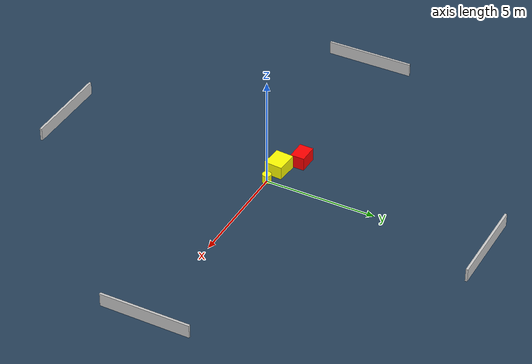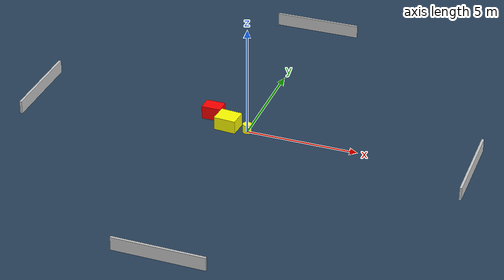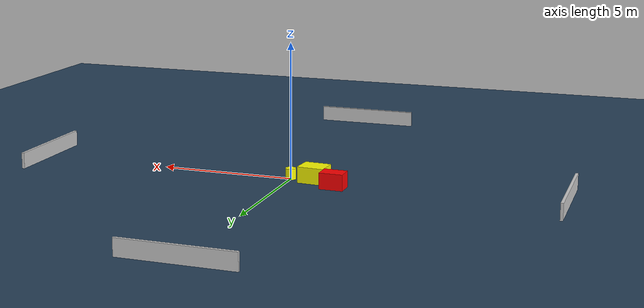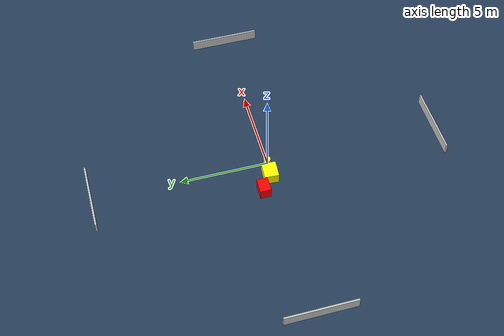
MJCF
<?xml version="1.0" ?>
<mujoco model="generated_environment">
  <option timestep="0.01" integrator="RK4" cone="elliptic"/>
  <default>
    <geom density="1"/>
  </default>
  <asset>
    <texture builtin="gradient" height="3072" name="skybox" rgb1="0.3 0.5 0.7" rgb2="0 0 0" type="skybox" width="512"/>
    <texture builtin="checker" height="300" name="groundplane" rgb1="0.2 0.3 0.4" rgb2="0.1 0.2 0.3" type="2d" width="300"/>
    <material name="groundplane" reflectance="0.2" texrepeat="5 5" texture="groundplane"/>
  </asset>
  <worldbody>
    <light dir="0 0 -1" directional="true" pos="0 0 1.5"/>
    <geom condim="3" friction="0.5 0.005 0.001" material="groundplane" name="floor" pos="0 0 0" size="0 0 0.05" type="plane"/>
    <body name="walls">
      <geom name="wall_1" condim="4" pos="-10.0 0.0 0.3" rgba="0.800000011920929 0.800000011920929 0.800000011920929 1.0" size="0.05 2.0 0.3" type="box"/>
      <geom name="wall_2" condim="4" pos="10.0 0.0 0.3" rgba="0.800000011920929 0.800000011920929 0.800000011920929 1.0" size="0.05 2.0 0.3" type="box"/>
      <geom name="wall_3" condim="4" pos="0.0 -10.0 0.3" rgba="0.800000011920929 0.800000011920929 0.800000011920929 1.0" size="2.0 0.05 0.3" type="box"/>
      <geom name="wall_4" condim="4" pos="0.0 10.0 0.3" rgba="0.800000011920929 0.800000011920929 0.800000011920929 1.0" size="2.0 0.05 0.3" type="box"/>
    </body>
    <body name="robot">
      <joint name="joint_x" type="slide" pos="0 0 0" axis="1 0 0"/>
      <joint name="joint_y" type="slide" pos="0 0 0" axis="0 1 0"/>
      <geom name="robot" type="cylinder" pos="0.0 0.0 0.2" size="0.2 0.2 0.0" mass="5.0" friction="1.0 0.005 0.0001" condim="4" rgba="1.0 1.0 0.0 1.0"/>
    </body>
    <body name="obstacle_1_movable">
      <geom name="obstacle_1_movable" condim="4" pos="-0.9242255352284279 0.09374670737866754 0.3" euler="0 0 265.7751639851811" friction="0.0 0.005 0.001" rgba="1.0 1.0 0.0 1.0" size="0.4097252832527849 0.4945963180499105 0.3" type="box" mass="0.1"/>
      <joint type="free"/>
    </body>
    <body name="obstacle_2_static">
      <geom name="obstacle_2_static" condim="4" pos="-1.8478846346042699 0.7113562105802024 0.3" euler="0 0 89.40965799403159" friction="0.0 0.005 0.001" rgba="1.0 0.0 0.0 1.0" size="0.3141460248398557 0.4353744952463441 0.3" type="box"/>
    </body>
  </worldbody>
  <actuator>
    <motor name="actuator_x" joint="joint_x" gear="1" ctrlrange="-1 1"/>
    <motor name="actuator_y" joint="joint_y" gear="1" ctrlrange="-1 1"/>
  </actuator>
</mujoco>
